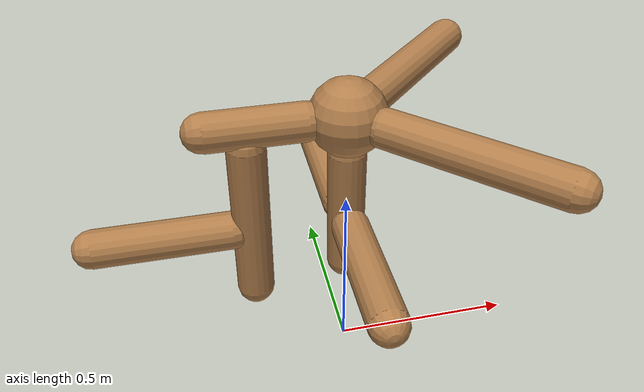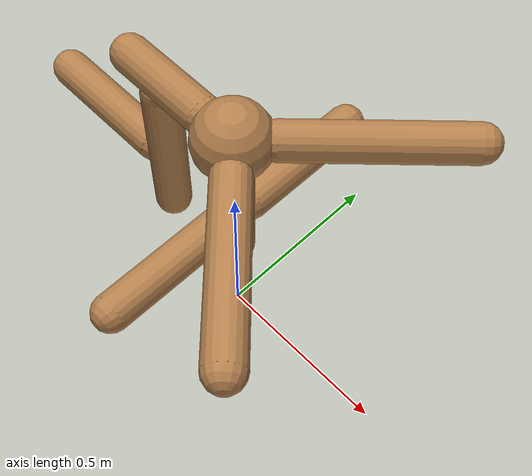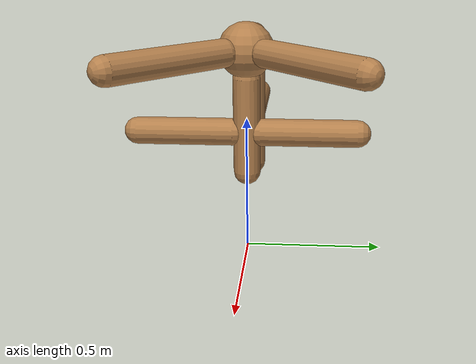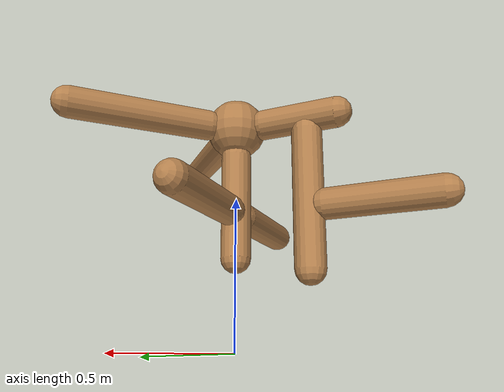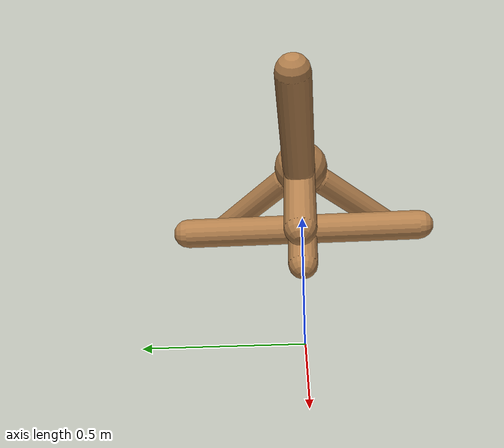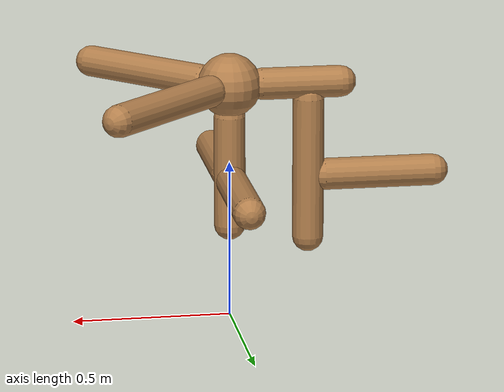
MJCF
<?xml version='1.0' encoding='UTF-8'?>
<!-- Universal Animal Template: unimal -->
<mujoco model="unimal">
  <compiler angle="degree"/>
  <size njmax="2000" nconmax="500"/>
  <option timestep=".005">
    <flag filterparent="disable"/>
  </option>
  <!-- Common defaults to make search space tractable -->
  <default>
    <!-- Define motor defaults -->
    <motor ctrlrange="-1 1" ctrllimited="true"/>
    <!-- Define joint defaults -->
    <default class="normal_joint">
      <joint type="hinge" damping="1" stiffness="1" armature="1" limited="true" range="-120 120" solimplimit="0 0.99 0.01"/>
    </default>
    <default class="walker_joint">
      <joint type="hinge" damping="0.2" stiffness="1" armature=".01" limited="true" range="-120 120" solimplimit="0 0.99 0.01"/>
    </default>
    <default class="stiff_joint">
      <joint type="hinge" damping="5" stiffness="10" armature=".01" limited="true" solimplimit="0 0.99 0.01"/>
    </default>
    <default class="free">
      <joint limited="false" damping="0" armature="0" stiffness="0"/>
    </default>
    <default class="growth_site">
      <site size="1e-6 1e-6 1e-6"/>
    </default>
    <default class="torso_growth_site">
      <site size="1e-6 1e-6 1e-6"/>
    </default>
    <default class="mirror_growth_site">
      <site size="1e-6 1e-6 1e-6"/>
    </default>
    <default class="btm_pos_site">
      <site size="1e-6 1e-6 1e-6"/>
    </default>
    <default class="box_face_site">
      <site size="1e-6 1e-6 1e-6"/>
    </default>
    <default class="imu_vel">
      <site type="box" size="0.05" rgba="1 0 0 0"/>
    </default>
    <default class="touch_site">
      <site group="3" rgba="0 0 1 .3"/>
    </default>
    <default class="food_site">
      <site material="food" size="0.15"/>
    </default>
    <!-- Define geom defaults -->
    <geom type="capsule" condim="3" friction="0.7 0.1 0.1" material="self"/>
  </default>
  <worldbody>
    <light diffuse="1 1 1" directional="true" exponent="1" pos="0 0 8" specular="0.1 0.1 0.1" dir="0 0 -1"/>
    <!-- Programatically generated xml goes here -->
    <body name="torso/0" pos="0 0 0.75">
      <joint name="root" type="free" class="free"/>
      <site name="root" class="imu_vel"/>
      <geom name="torso/0" type="sphere" size="0.1" condim="3" density="500"/>
      <camera name="side" pos="0 -7 2" xyaxes="1 0 0 0 1 2" mode="trackcom"/>
      <site name="torso/0" class="growth_site" pos="0 0 0"/>
      <site name="torso/btm_pos/0" class="btm_pos_site" pos="0 0 -0.1"/>
      <site name="torso/touch/0" class="touch_site" size="0.11"/>
      <site name="torso/vertical/0" class="torso_growth_site" pos="0 0 -0.1"/>
      <body name="limb/28" pos="-0.1 0.0 0.0">
        <joint name="limbx/28" type="hinge" class="normal_joint" range="-30 60" pos="0.05 0.0 0.0" axis="0.0 0.0 -1.0"/>
        <geom name="limb/28" type="capsule" fromto="0.0 0.0 0.0 -0.25 0.0 0.0" size="0.05" density="900"/>
        <site name="limb/mid/28" class="growth_site" pos="-0.15 0.0 0.0"/>
        <site name="limb/btm/28" class="growth_site" pos="-0.25 0.0 0.0"/>
        <site name="limb/btm_pos/28" class="btm_pos_site" pos="-0.25 0.0 0.0"/>
        <site name="limb/touch/28" class="touch_site" size="0.060000000000000005" fromto="0.0 0.0 0.0 -0.25 0.0 0.0" type="capsule"/>
        <body name="limb/29" pos="-0.15 0.0 -0.05">
          <joint name="limby/29" type="hinge" class="normal_joint" range="-60 0" pos="0.0 0.0 0.05" axis="0.0 1.0 0.0"/>
          <geom name="limb/29" type="capsule" fromto="0.0 0.0 0.0 0.0 0.0 -0.45" size="0.05" density="900"/>
          <site name="limb/mid/29" class="growth_site" pos="0.0 0.0 -0.25"/>
          <site name="limb/btm/29" class="growth_site" pos="0.0 0.0 -0.45"/>
          <site name="limb/btm_pos/29" class="btm_pos_site" pos="0.0 0.0 -0.5"/>
          <site name="limb/touch/29" class="touch_site" size="0.060000000000000005" fromto="0.0 0.0 0.0 0.0 0.0 -0.45" type="capsule"/>
          <body name="limb/37" pos="-0.05 0.0 -0.25">
            <joint name="limbx/37" type="hinge" class="normal_joint" range="-60 30" pos="0.05 0.0 0.0" axis="0.0 0.0 -1.0"/>
            <joint name="limby/37" type="hinge" class="normal_joint" range="0 90" pos="0.05 0.0 0.0" axis="0.0 1.0 0.0"/>
            <geom name="limb/37" type="capsule" fromto="0.0 0.0 0.0 -0.35 0.0 0.0" size="0.05" density="900"/>
            <site name="limb/mid/37" class="growth_site" pos="-0.2 0.0 0.0"/>
            <site name="limb/btm/37" class="growth_site" pos="-0.35 0.0 0.0"/>
            <site name="limb/btm_pos/37" class="btm_pos_site" pos="-0.4 0.0 0.0"/>
            <site name="limb/touch/37" class="touch_site" size="0.060000000000000005" fromto="0.0 0.0 0.0 -0.35 0.0 0.0" type="capsule"/>
          </body>
        </body>
      </body>
      <body name="limb/36" pos="0.0 0.0 -0.1">
        <joint name="limbx/36" type="hinge" class="normal_joint" range="-30 0" pos="0.0 0.0 0.05" axis="1.0 0.0 0.0"/>
        <joint name="limby/36" type="hinge" class="normal_joint" range="-30 30" pos="0.0 0.0 0.05" axis="0.0 1.0 0.0"/>
        <geom name="limb/36" type="capsule" fromto="0.0 0.0 0.0 0.0 0.0 -0.35" size="0.05" density="900"/>
        <site name="limb/mid/36" class="growth_site" pos="0.0 0.0 -0.2"/>
        <site name="limb/btm/36" class="growth_site" pos="0.0 0.0 -0.35"/>
        <site name="limb/btm_pos/36" class="btm_pos_site" pos="0.0 0.0 -0.4"/>
        <site name="limb/touch/36" class="touch_site" size="0.060000000000000005" fromto="0.0 0.0 0.0 0.0 0.0 -0.35" type="capsule"/>
        <body name="limb/38" pos="0.0 0.05 -0.2">
          <joint name="limby/38" type="hinge" class="normal_joint" range="-60 0" pos="0.0 -0.05 0.0" axis="0.0 0.0 1.0"/>
          <geom name="limb/38" type="capsule" fromto="0.0 0.0 0.0 0.0 0.35 0.0" size="0.05" density="900"/>
          <site name="limb/mid/38" class="mirror_growth_site" pos="0.0 0.2 0.0"/>
          <site name="limb/btm/38" class="mirror_growth_site" pos="0.0 0.35 0.0"/>
          <site name="limb/btm_pos/38" class="btm_pos_site" pos="0.0 0.4 0.0"/>
          <site name="limb/touch/38" class="touch_site" size="0.060000000000000005" fromto="0.0 0.0 0.0 0.0 0.35 0.0" type="capsule"/>
        </body>
        <body name="limb/39" pos="0.0 -0.05 -0.2">
          <joint name="limby/39" type="hinge" class="normal_joint" range="-60 0" pos="0.0 0.05 0.0" axis="-0.0 0.0 -1.0"/>
          <geom name="limb/39" type="capsule" fromto="0.0 0.0 0.0 0.0 -0.35 0.0" size="0.05" density="900"/>
          <site name="limb/mid/39" class="mirror_growth_site" pos="0.0 -0.2 0.0"/>
          <site name="limb/btm/39" class="mirror_growth_site" pos="0.0 -0.35 0.0"/>
          <site name="limb/btm_pos/39" class="btm_pos_site" pos="0.0 -0.4 0.0"/>
          <site name="limb/touch/39" class="touch_site" size="0.060000000000000005" fromto="0.0 0.0 0.0 0.0 -0.35 0.0" type="capsule"/>
        </body>
      </body>
      <body name="limb/40" pos="0.07 0.07 0.0">
        <joint name="limbx/40" type="hinge" class="normal_joint" range="-60 0" pos="-0.04 -0.04 0.0" axis="0.5 -0.5 0.7071"/>
        <joint name="limby/40" type="hinge" class="normal_joint" range="-45 0" pos="-0.04 -0.04 0.0" axis="-0.5 0.5 0.7071"/>
        <geom name="limb/40" type="capsule" fromto="0.0 0.0 0.0 0.32 0.32 0.0" size="0.05" density="900"/>
        <site name="limb/mid/40" class="mirror_growth_site" pos="0.18 0.18 0.0"/>
        <site name="limb/btm/40" class="mirror_growth_site" pos="0.32 0.32 0.0"/>
        <site name="limb/btm_pos/40" class="btm_pos_site" pos="0.35 0.35 0.0"/>
        <site name="limb/touch/40" class="touch_site" size="0.060000000000000005" fromto="0.0 0.0 0.0 0.32 0.32 0.0" type="capsule"/>
      </body>
      <body name="limb/41" pos="0.07 -0.07 0.0">
        <joint name="limbx/41" type="hinge" class="normal_joint" range="-60 0" pos="-0.04 0.04 0.0" axis="0.5 0.5 0.7071"/>
        <joint name="limby/41" type="hinge" class="normal_joint" range="-45 0" pos="-0.04 0.04 0.0" axis="0.5 0.5 -0.7071"/>
        <geom name="limb/41" type="capsule" fromto="0.0 0.0 0.0 0.32 -0.32 0.0" size="0.05" density="900"/>
        <site name="limb/mid/41" class="mirror_growth_site" pos="0.18 -0.18 0.0"/>
        <site name="limb/btm/41" class="mirror_growth_site" pos="0.32 -0.32 0.0"/>
        <site name="limb/btm_pos/41" class="btm_pos_site" pos="0.35 -0.35 0.0"/>
        <site name="limb/touch/41" class="touch_site" size="0.060000000000000005" fromto="0.0 0.0 0.0 0.32 -0.32 0.0" type="capsule"/>
      </body>
    </body>
  </worldbody>
  <actuator>
    <motor joint="limbx/28" gear="250" name="limbx/28"/>
    <motor joint="limby/29" gear="150" name="limby/29"/>
    <motor joint="limbx/37" gear="200" name="limbx/37"/>
    <motor joint="limby/37" gear="150" name="limby/37"/>
    <motor joint="limbx/36" gear="200" name="limbx/36"/>
    <motor joint="limby/36" gear="250" name="limby/36"/>
    <motor joint="limby/38" gear="300" name="limby/38"/>
    <motor joint="limby/39" gear="300" name="limby/39"/>
    <motor joint="limbx/40" gear="250" name="limbx/40"/>
    <motor joint="limby/40" gear="150" name="limby/40"/>
    <motor joint="limbx/41" gear="250" name="limbx/41"/>
    <motor joint="limby/41" gear="150" name="limby/41"/>
  </actuator>
  <sensor>
    <accelerometer name="torso_accel" site="root"/>
    <gyro name="torso_gyro" site="root"/>
    <velocimeter name="torso_vel" site="root"/>
    <subtreeangmom name="unimal_am" body="torso/0"/>
    <touch name="torso/0" site="torso/touch/0"/>
    <touch name="limb/28" site="limb/touch/28"/>
    <touch name="limb/29" site="limb/touch/29"/>
    <touch name="limb/37" site="limb/touch/37"/>
    <touch name="limb/36" site="limb/touch/36"/>
    <touch name="limb/38" site="limb/touch/38"/>
    <touch name="limb/39" site="limb/touch/39"/>
    <touch name="limb/40" site="limb/touch/40"/>
    <touch name="limb/41" site="limb/touch/41"/>
  </sensor>
  <!-- Add hfield assets -->
  <asset/>
  <!-- List of contacts to exclude -->
  <contact/>
  <!-- Define material, texture etc -->
  <asset>
    <material name="grid" texture="grid" texrepeat="1 1" texuniform="true" reflectance="0.1"/>
    <material name="hfield" texture="hfield" texrepeat="1 1" texuniform="true" reflectance="0.1"/>
    <material name="wall" texture="wall" texrepeat="1 1" texuniform="true" reflectance=".5"/>
    <material name="platform" texture="platform" texrepeat="1 1" texuniform="true" reflectance=".5"/>
    <material name="boundary" texture="boundary" texrepeat="1 1" texuniform="true" reflectance=".5"/>
    <material name="jump" texture="jump" texrepeat="1 1" texuniform="true" reflectance=".5"/>
    <material name="goal" rgba="1 0 0 1"/>
    <material name="food" rgba="0 0 1 1" emission="1"/>
    <material name="init_position" rgba="0 1 0 0.7"/>
    <material name="self" rgba=".7 .5 .3 1"/>
    <material name="self_invisible" rgba=".7 .5 .3 0"/>
    <material name="self_default" rgba=".7 .5 .3 1"/>
    <material name="self_highlight" rgba="0 .5 .3 1"/>
    <material name="effector" rgba=".7 .4 .2 1"/>
    <material name="effector_default" rgba=".7 .4 .2 1"/>
    <material name="effector_highlight" rgba="0 .5 .3 1"/>
    <material name="decoration" rgba=".3 .5 .7 1"/>
    <material name="eye" rgba="0 .2 1 1"/>
    <material name="target" rgba=".6 .3 .3 1"/>
    <material name="target_default" rgba=".6 .3 .3 1"/>
    <material name="target_highlight" rgba=".6 .3 .3 .4"/>
    <material name="site" rgba=".5 .5 .5 .3"/>
    <material name="ball" texture="ball"/>
  </asset>
  <asset>
    <texture name="grid" type="2d" builtin="checker" rgb1="0.4 0.4 0.4" rgb2="0.4 0.4 0.4" width="300" height="300" mark="edge" markrgb="0.2 0.2 0.2"/>
    <texture name="hfield" type="2d" builtin="checker" rgb1="0.4 0.4 0.4" rgb2="0.4 0.4 0.4" width="300" height="300" mark="edge" markrgb="0.2 0.2 0.2"/>
    <texture name="wall" type="2d" builtin="flat" rgb1="0.9 0.7 0" rgb2="0.9 0.7 0" width="300" height="300"/>
    <texture name="platform" type="2d" builtin="flat" rgb1="0.3 0 0.8" rgb2="0.3 0 0.8" width="300" height="300"/>
    <texture name="boundary" type="2d" builtin="flat" rgb1="0.3 0.3 0.3" rgb2="0.3 0.3 0.3" width="300" height="300"/>
    <texture name="jump" type="2d" builtin="flat" rgb1="0.3 0.3 0.3" rgb2="0.3 0.3 0.3" width="300" height="300"/>
    <texture name="skybox" type="skybox" builtin="gradient" rgb1="1 1 1" rgb2="0.6 0.6 0.6" width="800" height="800"/>
    <texture name="ball" builtin="checker" mark="cross" width="151" height="151" rgb1="0.1 0.1 0.1" rgb2="0.9 0.9 0.9" markrgb="1 1 1"/>
  </asset>
  <visual>
    <headlight ambient="0.6 0.6 0.6" diffuse="0.3 0.3 0.3" specular="0 0 0"/>
    <map znear=".01" shadowclip="0.5"/>
    <quality shadowsize="16384"/>
  </visual>
</mujoco>
